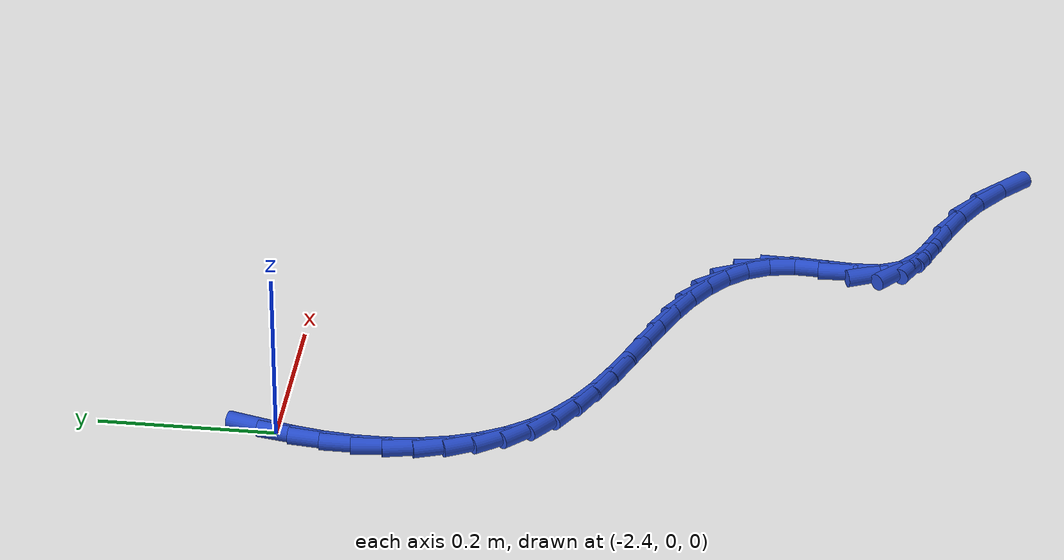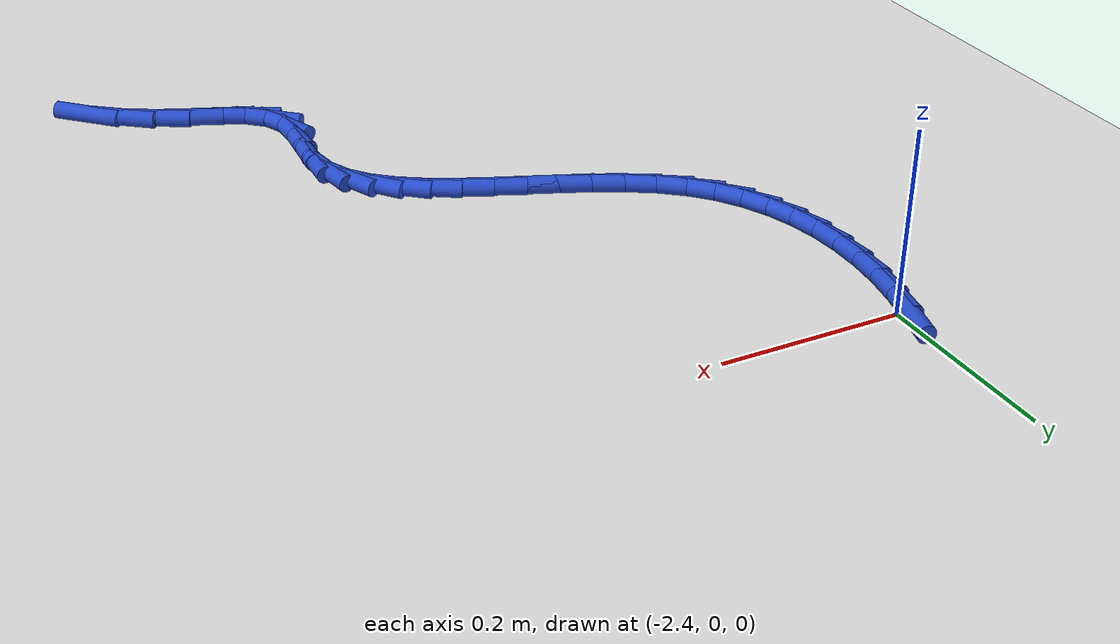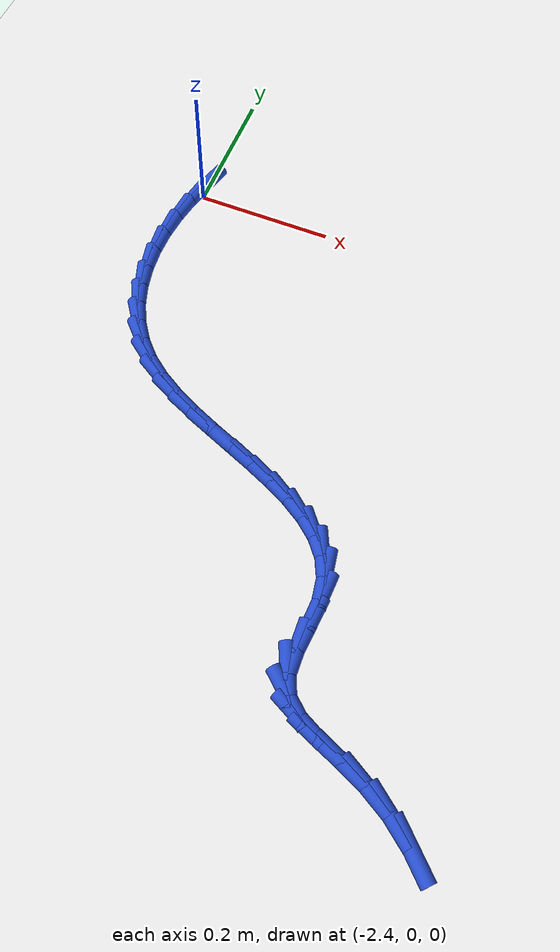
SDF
<sdf version="1.6">
 <world name="default">
  <model name="ground_plane">
   <static>1</static>
   <link name="link">
    <collision name="collision">
     <geometry><plane><normal>0 0 1</normal><size>100 100</size></plane></geometry>
     <surface><friction><ode><mu>100</mu><mu2>50</mu2></ode></friction></surface>
    </collision>
    <visual name="visual">
     <cast_shadows>0</cast_shadows>
     <geometry><plane><normal>0 0 1</normal><size>100 100</size></plane></geometry>
     <material>
      <script><uri>file://media/materials/scripts/gazebo.material</uri><name>Gazebo/WhiteGlow</name></script>
     </material>
    </visual>
   </link>
  </model>
  <model name="line">
   <link name="link_136">
    <pose>-2.403008717385872 0.015857229743026318 0.01 0 1.57 1.3113625125365431</pose>
    <collision name="collision">
     <geometry><cylinder><radius>0.01</radius><length>0.08</length></cylinder></geometry>
    </collision>
    <visual name="visual">
     <material>
      <script><name>Gazebo/Blue</name><uri>file://media/materials/scripts/gazebo.material</uri></script>
     </material>
     <geometry><cylinder><radius>0.01</radius><length>0.08</length></cylinder></geometry>
    </visual>
   </link>
   <link name="link_137">
    <pose>-2.4125525075009113 -0.020100709567570315 0.01 0 1.57 1.389886629057164</pose>
    <collision name="collision">
     <geometry><cylinder><radius>0.01</radius><length>0.08</length></cylinder></geometry>
    </collision>
    <visual name="visual">
     <material>
      <script><name>Gazebo/Blue</name><uri>file://media/materials/scripts/gazebo.material</uri></script>
     </material>
     <geometry><cylinder><radius>0.01</radius><length>0.08</length></cylinder></geometry>
    </visual>
   </link>
   <link name="link_138">
    <pose>-2.419132285463334 -0.056073569200282364 0.01 0 1.57 1.4738074029912904</pose>
    <collision name="collision">
     <geometry><cylinder><radius>0.01</radius><length>0.08</length></cylinder></geometry>
    </collision>
    <visual name="visual">
     <material>
      <script><name>Gazebo/Blue</name><uri>file://media/materials/scripts/gazebo.material</uri></script>
     </material>
     <geometry><cylinder><radius>0.01</radius><length>0.08</length></cylinder></geometry>
    </visual>
   </link>
   <link name="link_139">
    <pose>-2.422599129244326 -0.09170615617402375 0.01 0 1.57 1.564929065535225</pose>
    <collision name="collision">
     <geometry><cylinder><radius>0.01</radius><length>0.08</length></cylinder></geometry>
    </collision>
    <visual name="visual">
     <material>
      <script><name>Gazebo/Blue</name><uri>file://media/materials/scripts/gazebo.material</uri></script>
     </material>
     <geometry><cylinder><radius>0.01</radius><length>0.08</length></cylinder></geometry>
    </visual>
   </link>
   <link name="link_140">
    <pose>-2.4228041168150725 -0.1266432775077117 0.01 0 1.57 -1.4764731777955469</pose>
    <collision name="collision">
     <geometry><cylinder><radius>0.01</radius><length>0.08</length></cylinder></geometry>
    </collision>
    <visual name="visual">
     <material>
      <script><name>Gazebo/Blue</name><uri>file://media/materials/scripts/gazebo.material</uri></script>
     </material>
     <geometry><cylinder><radius>0.01</radius><length>0.08</length></cylinder></geometry>
    </visual>
   </link>
   <link name="link_141">
    <pose>-2.4195983261467604 -0.16052974022026317 0.01 0 1.57 -1.3654393867563583</pose>
    <collision name="collision">
     <geometry><cylinder><radius>0.01</radius><length>0.08</length></cylinder></geometry>
    </collision>
    <visual name="visual">
     <material>
      <script><name>Gazebo/Blue</name><uri>file://media/materials/scripts/gazebo.material</uri></script>
     </material>
     <geometry><cylinder><radius>0.01</radius><length>0.08</length></cylinder></geometry>
    </visual>
   </link>
   <link name="link_142">
    <pose>-2.412832835210576 -0.19301035133059222 0.01 0 1.57 -1.2421984282706584</pose>
    <collision name="collision">
     <geometry><cylinder><radius>0.01</radius><length>0.08</length></cylinder></geometry>
    </collision>
    <visual name="visual">
     <material>
      <script><name>Gazebo/Blue</name><uri>file://media/materials/scripts/gazebo.material</uri></script>
     </material>
     <geometry><cylinder><radius>0.01</radius><length>0.08</length></cylinder></geometry>
    </visual>
   </link>
   <link name="link_143">
    <pose>-2.4023587219777043 -0.22372991785761703 0.01 0 1.57 -1.106310200146011</pose>
    <collision name="collision">
     <geometry><cylinder><radius>0.01</radius><length>0.08</length></cylinder></geometry>
    </collision>
    <visual name="visual">
     <material>
      <script><name>Gazebo/Blue</name><uri>file://media/materials/scripts/gazebo.material</uri></script>
     </material>
     <geometry><cylinder><radius>0.01</radius><length>0.08</length></cylinder></geometry>
    </visual>
   </link>
   <link name="link_144">
    <pose>-2.388027064419334 -0.2523332468202517 0.01 0 1.57 -0.9588951850312484</pose>
    <collision name="collision">
     <geometry><cylinder><radius>0.01</radius><length>0.08</length></cylinder></geometry>
    </collision>
    <visual name="visual">
     <material>
      <script><name>Gazebo/Blue</name><uri>file://media/materials/scripts/gazebo.material</uri></script>
     </material>
     <geometry><cylinder><radius>0.01</radius><length>0.08</length></cylinder></geometry>
    </visual>
   </link>
   <link name="link_145">
    <pose>-2.3696889405066495 -0.278465145237414 0.01 0 1.57 -0.8031208511158167</pose>
    <collision name="collision">
     <geometry><cylinder><radius>0.01</radius><length>0.08</length></cylinder></geometry>
    </collision>
    <visual name="visual">
     <material>
      <script><name>Gazebo/Blue</name><uri>file://media/materials/scripts/gazebo.material</uri></script>
     </material>
     <geometry><cylinder><radius>0.01</radius><length>0.08</length></cylinder></geometry>
    </visual>
   </link>
   <link name="link_146">
    <pose>-2.3471954282108376 -0.3017704201280186 0.01 0 1.57 -0.6508283049797869</pose>
    <collision name="collision">
     <geometry><cylinder><radius>0.01</radius><length>0.08</length></cylinder></geometry>
    </collision>
    <visual name="visual">
     <material>
      <script><name>Gazebo/Blue</name><uri>file://media/materials/scripts/gazebo.material</uri></script>
     </material>
     <geometry><cylinder><radius>0.01</radius><length>0.08</length></cylinder></geometry>
    </visual>
   </link>
   <link name="link_147">
    <pose>-2.320569259612926 -0.3220465727340948 0.01 0 1.57 -0.5326860924726369</pose>
    <collision name="collision">
     <geometry><cylinder><radius>0.01</radius><length>0.08</length></cylinder></geometry>
    </collision>
    <visual name="visual">
     <material>
      <script><name>Gazebo/Blue</name><uri>file://media/materials/scripts/gazebo.material</uri></script>
     </material>
     <geometry><cylinder><radius>0.01</radius><length>0.08</length></cylinder></geometry>
    </visual>
   </link>
   <link name="link_148">
    <pose>-2.290560205342911 -0.339737838515153 0.01 0 1.57 -0.451168968803652</pose>
    <collision name="collision">
     <geometry><cylinder><radius>0.01</radius><length>0.08</length></cylinder></geometry>
    </collision>
    <visual name="visual">
     <material>
      <script><name>Gazebo/Blue</name><uri>file://media/materials/scripts/gazebo.material</uri></script>
     </material>
     <geometry><cylinder><radius>0.01</radius><length>0.08</length></cylinder></geometry>
    </visual>
   </link>
   <link name="link_149">
    <pose>-2.2581104891004435 -0.3554596487848804 0.01 0 1.57 -0.40036824568304585</pose>
    <collision name="collision">
     <geometry><cylinder><radius>0.01</radius><length>0.08</length></cylinder></geometry>
    </collision>
    <visual name="visual">
     <material>
      <script><name>Gazebo/Blue</name><uri>file://media/materials/scripts/gazebo.material</uri></script>
     </material>
     <geometry><cylinder><radius>0.01</radius><length>0.08</length></cylinder></geometry>
    </visual>
   </link>
   <link name="link_150">
    <pose>-2.224162335845162 -0.3698274359777756 0.01 0 1.57 -0.37618791904637133</pose>
    <collision name="collision">
     <geometry><cylinder><radius>0.01</radius><length>0.08</length></cylinder></geometry>
    </collision>
    <visual name="visual">
     <material>
      <script><name>Gazebo/Blue</name><uri>file://media/materials/scripts/gazebo.material</uri></script>
     </material>
     <geometry><cylinder><radius>0.01</radius><length>0.08</length></cylinder></geometry>
    </visual>
   </link>
   <link name="link_151">
    <pose>-2.189657970536702 -0.383456632528339 0.01 0 1.57 -0.3769309907005157</pose>
    <collision name="collision">
     <geometry><cylinder><radius>0.01</radius><length>0.08</length></cylinder></geometry>
    </collision>
    <visual name="visual">
     <material>
      <script><name>Gazebo/Blue</name><uri>file://media/materials/scripts/gazebo.material</uri></script>
     </material>
     <geometry><cylinder><radius>0.01</radius><length>0.08</length></cylinder></geometry>
    </visual>
   </link>
   <link name="link_152">
    <pose>-2.1555396181347 -0.3969626708710704 0.01 0 1.57 -0.40348434929455507</pose>
    <collision name="collision">
     <geometry><cylinder><radius>0.01</radius><length>0.08</length></cylinder></geometry>
    </collision>
    <visual name="visual">
     <material>
      <script><name>Gazebo/Blue</name><uri>file://media/materials/scripts/gazebo.material</uri></script>
     </material>
     <geometry><cylinder><radius>0.01</radius><length>0.08</length></cylinder></geometry>
    </visual>
   </link>
   <link name="link_153">
    <pose>-2.1227495035987936 -0.4109609834404688 0.01 0 1.57 -0.45960781292507885</pose>
    <collision name="collision">
     <geometry><cylinder><radius>0.01</radius><length>0.08</length></cylinder></geometry>
    </collision>
    <visual name="visual">
     <material>
      <script><name>Gazebo/Blue</name><uri>file://media/materials/scripts/gazebo.material</uri></script>
     </material>
     <geometry><cylinder><radius>0.01</radius><length>0.08</length></cylinder></geometry>
    </visual>
   </link>
   <link name="link_154">
    <pose>-2.092229851888619 -0.42606700267103453 0.01 0 1.57 -0.5523153809755331</pose>
    <collision name="collision">
     <geometry><cylinder><radius>0.01</radius><length>0.08</length></cylinder></geometry>
    </collision>
    <visual name="visual">
     <material>
      <script><name>Gazebo/Blue</name><uri>file://media/materials/scripts/gazebo.material</uri></script>
     </material>
     <geometry><cylinder><radius>0.01</radius><length>0.08</length></cylinder></geometry>
    </visual>
   </link>
   <link name="link_155">
    <pose>-2.0649228879638133 -0.4428961609972665 0.01 0 1.57 -0.691526897718295</pose>
    <collision name="collision">
     <geometry><cylinder><radius>0.01</radius><length>0.08</length></cylinder></geometry>
    </collision>
    <visual name="visual">
     <material>
      <script><name>Gazebo/Blue</name><uri>file://media/materials/scripts/gazebo.material</uri></script>
     </material>
     <geometry><cylinder><radius>0.01</radius><length>0.08</length></cylinder></geometry>
    </visual>
   </link>
   <link name="link_156">
    <pose>-2.041770836784013 -0.4620638908536653 0.01 0 1.57 -0.8862780421003934</pose>
    <collision name="collision">
     <geometry><cylinder><radius>0.01</radius><length>0.08</length></cylinder></geometry>
    </collision>
    <visual name="visual">
     <material>
      <script><name>Gazebo/Blue</name><uri>file://media/materials/scripts/gazebo.material</uri></script>
     </material>
     <geometry><cylinder><radius>0.01</radius><length>0.08</length></cylinder></geometry>
    </visual>
   </link>
   <link name="link_157">
    <pose>-2.0237159233088557 -0.48418562467472964 0.01 0 1.57 -1.1333276539238881</pose>
    <collision name="collision">
     <geometry><cylinder><radius>0.01</radius><length>0.08</length></cylinder></geometry>
    </collision>
    <visual name="visual">
     <material>
      <script><name>Gazebo/Blue</name><uri>file://media/materials/scripts/gazebo.material</uri></script>
     </material>
     <geometry><cylinder><radius>0.01</radius><length>0.08</length></cylinder></geometry>
    </visual>
   </link>
   <link name="link_158">
    <pose>-2.011700372497976 -0.5098767948949602 0.01 0 1.57 -1.403757725026651</pose>
    <collision name="collision">
     <geometry><cylinder><radius>0.01</radius><length>0.08</length></cylinder></geometry>
    </collision>
    <visual name="visual">
     <material>
      <script><name>Gazebo/Blue</name><uri>file://media/materials/scripts/gazebo.material</uri></script>
     </material>
     <geometry><cylinder><radius>0.01</radius><length>0.08</length></cylinder></geometry>
    </visual>
   </link>
   <link name="link_159">
    <pose>-2.0066633311973057 -0.5397507653910175 0.01 0 1.57 1.5324065807214542</pose>
    <collision name="collision">
     <geometry><cylinder><radius>0.01</radius><length>0.08</length></cylinder></geometry>
    </collision>
    <visual name="visual">
     <material>
      <script><name>Gazebo/Blue</name><uri>file://media/materials/scripts/gazebo.material</uri></script>
     </material>
     <geometry><cylinder><radius>0.01</radius><length>0.08</length></cylinder></geometry>
    </visual>
   </link>
   <link name="link_160">
    <pose>-2.0079539223476934 -0.5733523701787104 0.01 0 1.57 1.4892377884076409</pose>
    <collision name="collision">
     <geometry><cylinder><radius>0.01</radius><length>0.08</length></cylinder></geometry>
    </collision>
    <visual name="visual">
     <material>
      <script><name>Gazebo/Blue</name><uri>file://media/materials/scripts/gazebo.material</uri></script>
     </material>
     <geometry><cylinder><radius>0.01</radius><length>0.08</length></cylinder></geometry>
    </visual>
   </link>
   <link name="link_161">
    <pose>-2.010738225401982 -0.607415349137524 0.01 0 1.57 -1.5307019018294363</pose>
    <collision name="collision">
     <geometry><cylinder><radius>0.01</radius><length>0.08</length></cylinder></geometry>
    </collision>
    <visual name="visual">
     <material>
      <script><name>Gazebo/Blue</name><uri>file://media/materials/scripts/gazebo.material</uri></script>
     </material>
     <geometry><cylinder><radius>0.01</radius><length>0.08</length></cylinder></geometry>
    </visual>
   </link>
   <link name="link_162">
    <pose>-2.009502602464509 -0.6382166576410633 0.01 0 1.57 -1.1611108209787633</pose>
    <collision name="collision">
     <geometry><cylinder><radius>0.01</radius><length>0.08</length></cylinder></geometry>
    </collision>
    <visual name="visual">
     <material>
      <script><name>Gazebo/Blue</name><uri>file://media/materials/scripts/gazebo.material</uri></script>
     </material>
     <geometry><cylinder><radius>0.01</radius><length>0.08</length></cylinder></geometry>
    </visual>
   </link>
   <link name="link_163">
    <pose>-1.999048414921509 -0.6622903722019783 0.01 0 1.57 -0.7076717752569077</pose>
    <collision name="collision">
     <geometry><cylinder><radius>0.01</radius><length>0.08</length></cylinder></geometry>
    </collision>
    <visual name="visual">
     <material>
      <script><name>Gazebo/Blue</name><uri>file://media/materials/scripts/gazebo.material</uri></script>
     </material>
     <geometry><cylinder><radius>0.01</radius><length>0.08</length></cylinder></geometry>
    </visual>
   </link>
   <link name="link_164">
    <pose>-1.9786017286433655 -0.679782276159823 0.01 0 1.57 -0.45635089824951713</pose>
    <collision name="collision">
     <geometry><cylinder><radius>0.01</radius><length>0.08</length></cylinder></geometry>
    </collision>
    <visual name="visual">
     <material>
      <script><name>Gazebo/Blue</name><uri>file://media/materials/scripts/gazebo.material</uri></script>
     </material>
     <geometry><cylinder><radius>0.01</radius><length>0.08</length></cylinder></geometry>
    </visual>
   </link>
   <link name="link_165">
    <pose>-1.9506529257712124 -0.6935026818419081 0.01 0 1.57 -0.3717634685279212</pose>
    <collision name="collision">
     <geometry><cylinder><radius>0.01</radius><length>0.08</length></cylinder></geometry>
    </collision>
    <visual name="visual">
     <material>
      <script><name>Gazebo/Blue</name><uri>file://media/materials/scripts/gazebo.material</uri></script>
     </material>
     <geometry><cylinder><radius>0.01</radius><length>0.08</length></cylinder></geometry>
    </visual>
   </link>
   <link name="link_166">
    <pose>-1.9177685590392632 -0.706324076541579 0.01 0 1.57 -0.3973495140105888</pose>
    <collision name="collision">
     <geometry><cylinder><radius>0.01</radius><length>0.08</length></cylinder></geometry>
    </collision>
    <visual name="visual">
     <material>
      <script><name>Gazebo/Blue</name><uri>file://media/materials/scripts/gazebo.material</uri></script>
     </material>
     <geometry><cylinder><radius>0.01</radius><length>0.08</length></cylinder></geometry>
    </visual>
   </link>
   <link name="link_167">
    <pose>-1.8825151811817293 -0.7211189475521833 0.01 0 1.57 -0.5088765370665631</pose>
    <collision name="collision">
     <geometry><cylinder><radius>0.01</radius><length>0.08</length></cylinder></geometry>
    </collision>
    <visual name="visual">
     <material>
      <script><name>Gazebo/Blue</name><uri>file://media/materials/scripts/gazebo.material</uri></script>
     </material>
     <geometry><cylinder><radius>0.01</radius><length>0.08</length></cylinder></geometry>
    </visual>
   </link>
   <link name="link_168">
    <pose>-1.8474185227390811 -0.7406988351563291 0.01 0 1.57 -0.6489080564891676</pose>
    <collision name="collision">
     <geometry><cylinder><radius>0.01</radius><length>0.08</length></cylinder></geometry>
    </collision>
    <visual name="visual">
     <material>
      <script><name>Gazebo/Blue</name><uri>file://media/materials/scripts/gazebo.material</uri></script>
     </material>
     <geometry><cylinder><radius>0.01</radius><length>0.08</length></cylinder></geometry>
    </visual>
   </link>
   <link name="link_169">
    <pose>-1.81385358888423 -0.7661572614484393 0.01 0 1.57 -0.7625918317452247</pose>
    <collision name="collision">
     <geometry><cylinder><radius>0.01</radius><length>0.08</length></cylinder></geometry>
    </collision>
    <visual name="visual">
     <material>
      <script><name>Gazebo/Blue</name><uri>file://media/materials/scripts/gazebo.material</uri></script>
     </material>
     <geometry><cylinder><radius>0.01</radius><length>0.08</length></cylinder></geometry>
    </visual>
   </link>
  </model>
 </world>
</sdf>
